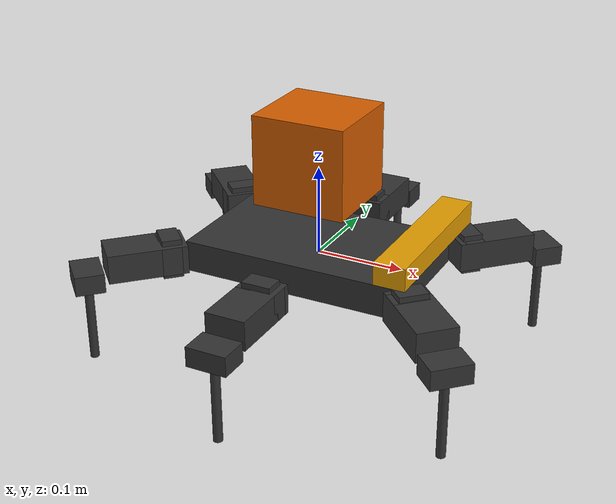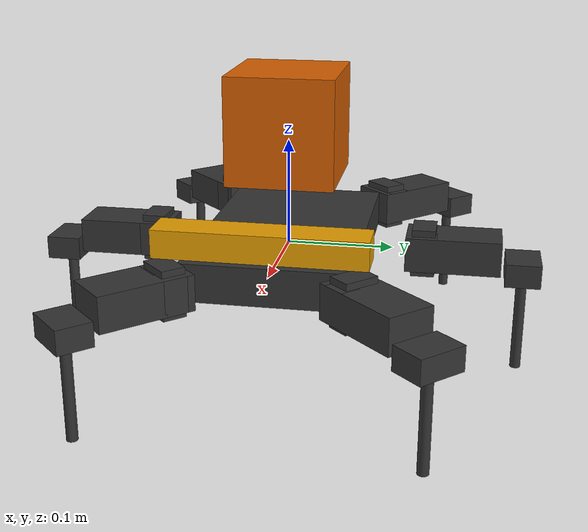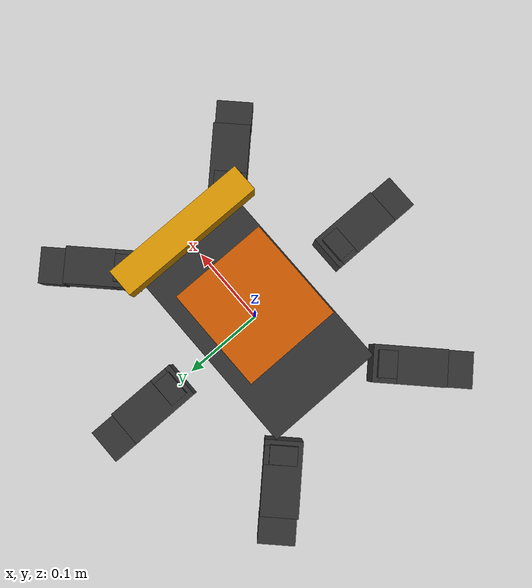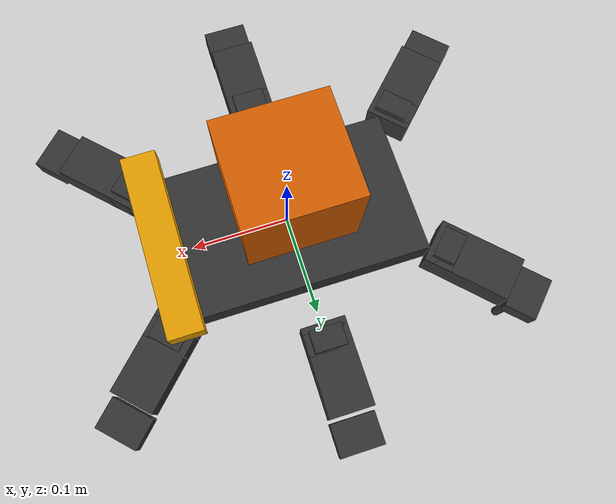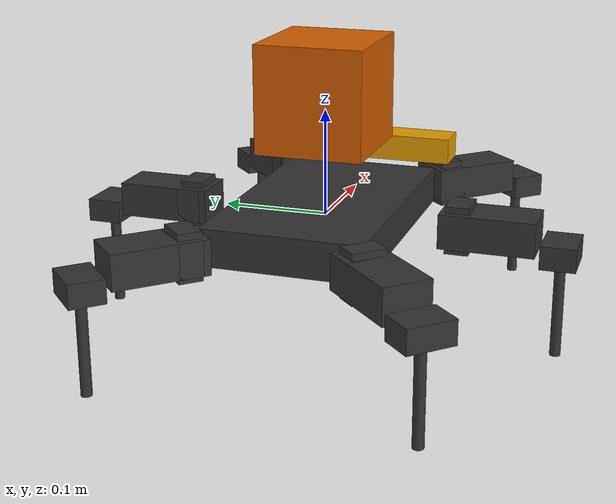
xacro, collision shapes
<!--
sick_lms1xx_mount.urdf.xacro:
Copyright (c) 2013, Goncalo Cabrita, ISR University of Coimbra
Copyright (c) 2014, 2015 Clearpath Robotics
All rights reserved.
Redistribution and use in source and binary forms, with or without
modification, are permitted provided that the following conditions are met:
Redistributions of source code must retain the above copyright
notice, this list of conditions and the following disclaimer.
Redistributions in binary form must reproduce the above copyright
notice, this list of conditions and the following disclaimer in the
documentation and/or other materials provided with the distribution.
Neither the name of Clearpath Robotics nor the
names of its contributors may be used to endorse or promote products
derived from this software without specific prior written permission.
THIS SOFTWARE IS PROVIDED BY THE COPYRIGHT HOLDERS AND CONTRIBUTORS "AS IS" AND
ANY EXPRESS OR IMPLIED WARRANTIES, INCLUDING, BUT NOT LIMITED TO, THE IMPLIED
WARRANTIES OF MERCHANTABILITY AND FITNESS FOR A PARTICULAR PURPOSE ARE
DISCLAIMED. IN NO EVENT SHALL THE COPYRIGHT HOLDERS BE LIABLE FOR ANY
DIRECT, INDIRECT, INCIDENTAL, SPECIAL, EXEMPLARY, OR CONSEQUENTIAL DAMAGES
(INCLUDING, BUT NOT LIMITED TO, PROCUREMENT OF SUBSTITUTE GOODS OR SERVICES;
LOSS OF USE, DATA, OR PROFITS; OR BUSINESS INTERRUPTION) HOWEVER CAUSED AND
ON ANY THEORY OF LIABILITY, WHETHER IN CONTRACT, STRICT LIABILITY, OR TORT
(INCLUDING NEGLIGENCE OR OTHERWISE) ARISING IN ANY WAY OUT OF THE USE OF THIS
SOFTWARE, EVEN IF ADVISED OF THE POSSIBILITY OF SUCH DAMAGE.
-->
<?xml version="1.0" ?>
<robot name="Simple_Hexapod"  xmlns:xacro="http://www.ros.org/wiki/xacro">

  <xacro:include filename="$(find simple_hexapod_description)/urdf/simple_hexapod_urdf.xacro" />
  <xacro:include filename="$(find simple_hexapod_description)/urdf/sensor_urdf/asus_camera.urdf.xacro" />
  <xacro:include filename="$(find simple_hexapod_description)/urdf/sensor_urdf/sick_lms1xx_mount.urdf.xacro" />

  <link name="base_link"/>

	<xacro:simple_hexapod parent="base_link">
        <origin xyz="0 0 0" rpy="0 0 0" />
    </xacro:simple_hexapod>

	<xacro:asus_camera name="depth_camera" parent="base_link">
    	<origin xyz="0.125 0 0.04" rpy="0 0 0"/>
  	</xacro:asus_camera>

	<xacro:sick_lms1xx_mount parent="base_link">
    	<origin xyz="0 0 0.0175" rpy="0 0 0"/>
  	</xacro:sick_lms1xx_mount>

	<gazebo>
    	<plugin filename="libgazebo_ros_control.so" name="gazebo_ros_control">
      	<robotNamespace>/simple_hexapod</robotNamespace>
    	</plugin>
  	</gazebo>

</robot>

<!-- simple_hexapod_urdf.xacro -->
<robot xmlns:xacro="http://www.ros.org/wiki/xacro">

<xacro:property name="connect_offset" value="0.02633" />
<xacro:property name="thigh_offset_x" value="0" />
<xacro:property name="thigh_offset_y" value="-0.0645" />
<xacro:property name="thigh_offset_z" value="-0.0145" />
<xacro:property name="camera_link" value="0.05" /> <!-- Size of square 'camera' box -->

<xacro:macro name="simple_hexapod" params="parent *origin">

      <joint name="j_simple_hexapod_attachment" type="fixed">
        <parent link="${parent}"/>
        <child link="MP_BODY"/>
        <xacro:insert_block name="origin" />
      </joint>

      <link name="MP_BODY">
        <inertial>
          <origin xyz="0 0 0" />
          <mass value="0.97559947"/>
          <inertia ixx="3.1081800"  ixy="-0.25460189"  ixz="2.0318174" iyy="6.3787776" iyz="0.16417863" izz="5.3316425" />
        </inertial>
        <visual>
          <!--origin xyz="-0.0235 0 -0.03525" rpy="0 0 0" /-->
          <origin xyz="0 0 0" rpy="0 0 0" />
          <geometry>
            <box size="0.25 0.15 0.035" />
          </geometry>
          <material name="Grey">
            <color rgba="0.20 0.20 0.20 1.0"/>
          </material>
        </visual>
        <collision>
          <origin xyz="0 0 0" rpy="0 0 0" />
          <geometry>
            <box size="0.25 0.15 0.035" />
          </geometry>

        </collision>
      </link>

      <gazebo reference="MP_BODY">
        <material>Gazebo/Grey</material>
      </gazebo>

    <xacro:leg_l xyz="0.1248 -0.06164  0.001116"  rpy="0 4.7123 0.7853981633974483" suffix="rf"/>
    <xacro:leg_l xyz="0 -0.1034  0.001116"  rpy="0 4.7123 0" suffix="rm"/>
    <xacro:leg_l xyz="-0.1248 -0.06164  0.001116"  rpy="0 4.7123 -0.7853981633974483" suffix="rr"/>

    <xacro:leg_l xyz="0.1248 0.06164  0.001116"  rpy="0 4.7123 2.356194490192345" suffix="lf"/>
    <xacro:leg_l xyz="0 0.1034  0.001116"  rpy="0 4.7123 3.14159" suffix="lm"/>
    <xacro:leg_l xyz="-0.1248 0.06164  0.001116"  rpy="0 4.7123 3.9269908169872414" suffix="lr"/>

</xacro:macro>

 <xacro:macro name="leg_l" params="xyz rpy suffix">

  <link name="c1_${suffix}">
    <inertial>
      <origin xyz="0 -${connect_offset} 0" rpy="0 0 0"  />
      <mass value="0.024357719"/>
     <inertia ixx="0.0051411124"  ixy="-0.00057530255"  ixz="-0.000024729049" iyy="0.0081915737" iyz="-0.000019223094" izz="0.0011379812" />
    </inertial>
    <visual>
      <origin xyz="0 -0.0252 0" rpy="0 0 0"  />
      <geometry>
        <box size="0.045 0.022 0.0325" />
      </geometry>
      <material name="Grey">
        <color rgba="0.20 0.20 0.20 1.0"/>
      </material>
    </visual>
    <collision>
      <origin xyz="0 -${connect_offset} 0" rpy="0 0 0"  />
      <geometry>
        <box size="0.045 0.022 0.0325" />
      </geometry>
    </collision>
  </link>

  <link name="c2_${suffix}">
    <inertial>
      <origin xyz="0 -${connect_offset} 0" rpy="0 0 0"  />
      <mass value="0.024357719"/>
     <inertia ixx="0.0051411124"  ixy="-0.00057530255"  ixz="-0.000024729049" iyy="0.0081915737" iyz="-0.000019223094" izz="0.0011379812" />
    </inertial>
    <visual>
      <origin xyz="0 -0.0252 0" rpy="0 0 0"  />
      <geometry>
        <box size="0.045 0.022 0.0325" />
      </geometry>
      <material name="Grey">
        <color rgba="0.20 0.20 0.20 1.0"/>
      </material>
    </visual>
    <collision>
      <origin xyz="0 -${connect_offset} 0" rpy="0 0 0"  />
      <geometry>
        <box size="0.045 0.022 0.0325" />
      </geometry>
    </collision>
  </link>

  <link name="thigh_${suffix}">
    <inertial>
      <origin xyz="0 0 0" rpy="0 0 0"  />
      <mass value="0.024357719"/>
     <inertia ixx="0.0051411124"  ixy="-0.00057530255"  ixz="-0.000024729049" iyy="0.0081915737" iyz="-0.000019223094" izz="0.0011379812" />
    </inertial>
    <visual>
      <origin xyz="0 0 0" rpy="0 0 0"  />
      <geometry>
        <box size="0.045 0.088 0.0325" />
      </geometry>
      <material name="Grey">
        <color rgba="0.20 0.20 0.20 1.0"/>
      </material>
    </visual>
    <collision>
      <origin xyz="0 0 0" rpy="0 0 0"  />
      <geometry>
        <box size="0.045 0.088 0.0325" />
      </geometry>
    </collision>
  </link>

  <link name="tibia_${suffix}">
    <inertial>
      <origin xyz="0 0 0" rpy="0 0 0"  />
      <mass value="0.024357719"/>
     <inertia ixx="0.0051411124"  ixy="-0.00057530255"  ixz="-0.000024729049" iyy="0.0081915737" iyz="-0.000019223094" izz="0.0011379812" />
    </inertial>
    <visual>
      <origin xyz="0 0 0" rpy="0 0 0"  />
      <geometry>
        <box size="0.045 0.022 0.0325" />
      </geometry>
      <material name="Grey">
        <color rgba="0.20 0.20 0.20 1.0"/>
      </material>
    </visual>
    <collision>
      <origin xyz="0 0 0" rpy="0 0 0"  />
      <geometry>
        <box size="0.045 0.022 0.0325" />
      </geometry>
    </collision>
  </link>

  <link name="tibia_ext_${suffix}">
    <inertial>
      <origin xyz="0 0 0" rpy="0 0 0"  />
      <mass value="0.024357719"/>
     <inertia ixx="0.0051411124"  ixy="-0.00057530255"  ixz="-0.000024729049" iyy="0.0081915737" iyz="-0.000019223094" izz="0.0011379812" />
    </inertial>
    <visual>
      <origin xyz="0 0 -0.05" rpy="0 0 0"  />
      <geometry>
        <cylinder length="0.1" radius="0.005"/>
      </geometry>
      <material name="Grey">
        <color rgba="0.20 0.20 0.20 1.0"/>
      </material>
    </visual>
    <collision>
      <origin xyz="0 0 -0.05" rpy="0 0 0"  />
      <geometry>
        <cylinder length="0.1" radius="0.005"/>
      </geometry>
    </collision>
  </link>

  <joint name="j_c1_${suffix}" type="revolute">
    <parent link="MP_BODY"/>
    <child link="c1_${suffix}"/>
    <origin xyz="${xyz}" rpy="${rpy}" />
    <axis xyz="1 0 0" />
    <limit effort="2.8" velocity="5.6548668" lower="-2.6179939" upper="2.6179939" />
  </joint>

  <joint name="j_c2_${suffix}" type="fixed">
    <parent link="c1_${suffix}"/>
    <child link="c2_${suffix}"/>
    <origin xyz="0 -0.054 0" rpy="0 1.5704 3.14159" />
  </joint>

  <joint name="j_thigh_${suffix}" type="revolute">
    <parent link="c2_${suffix}"/>
    <child link="thigh_${suffix}"/>
    <origin xyz="0 0 0" rpy=" 0 3.14159 3.14159" />
    <axis xyz="1 0 0" />
    <limit effort="2.8" velocity="5.6548668" lower="-2.6179939" upper="2.6179939" />
  </joint>

  <joint name="j_tibia_${suffix}" type="revolute">
    <parent link="thigh_${suffix}"/>
    <child link="tibia_${suffix}"/>
    <origin xyz="${thigh_offset_x} ${thigh_offset_y} ${thigh_offset_z}" rpy="-1.5707 0 3.14159" />
    <axis xyz="1 0 0" />
    <limit effort="2.8" velocity="5.6548668" lower="-2.6179939" upper="2.6179939" />
  </joint>

  <joint name="j_tibia_ext_${suffix}" type="fixed">
    <parent link="tibia_${suffix}"/>
    <child link="tibia_ext_${suffix}"/>
    <origin xyz="0 0 0" rpy="1.57075 0 0" />
  </joint>

   <transmission name="t_c1_${suffix}">
    <type>transmission_interface/SimpleTransmission</type>
    <joint name="j_c1_${suffix}">
      <hardwareInterface>EffortJointInterface</hardwareInterface>
    </joint>
    <actuator name="m_c1_${suffix}">
      <hardwareInterface>EffortJointInterface</hardwareInterface>
      <mechanicalReduction>1</mechanicalReduction>
    </actuator>
  </transmission>

   <transmission name="t_thigh_${suffix}">
    <type>transmission_interface/SimpleTransmission</type>
    <joint name="j_thigh_${suffix}">
      <hardwareInterface>EffortJointInterface</hardwareInterface>
    </joint>
    <actuator name="m_thigh_${suffix}">
      <hardwareInterface>EffortJointInterface</hardwareInterface>
      <mechanicalReduction>1</mechanicalReduction>
    </actuator>
  </transmission>

   <transmission name="t_tibia_${suffix}">
    <type>transmission_interface/SimpleTransmission</type>
    <joint name="j_tibia_${suffix}">
      <hardwareInterface>EffortJointInterface</hardwareInterface>
    </joint>
    <actuator name="m_tibia_${suffix}">
      <hardwareInterface>EffortJointInterface</hardwareInterface>
      <mechanicalReduction>1</mechanicalReduction>
    </actuator>
  </transmission>

  <gazebo reference="c1_${suffix}">
    <material>Gazebo/Grey</material>
  </gazebo>

  <gazebo reference="c2_${suffix}">
    <material>Gazebo/Grey</material>
  </gazebo>

  <gazebo reference="thigh_${suffix}">
    <material>Gazebo/Grey</material>
  </gazebo>

  <gazebo reference="tibia_${suffix}">
    <material>Gazebo/Grey</material>
  </gazebo>

</xacro:macro>

</robot>

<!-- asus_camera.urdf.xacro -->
<robot xmlns:xacro="http://ros.org/wiki/xacro">
    <xacro:property name="M_PI" value="3.1415926535897931" />

    <xacro:macro name="asus_camera_model" params="name parent *origin">
      <joint name="${name}_joint" type="fixed">
        <xacro:insert_block name="origin" />
        <parent link="${parent}"/>
        <child link="${name}_link"/>
      </joint>

      <link name="${name}_link">
        <inertial>
          <mass value="0.200" />
          <origin xyz="0 0 0" rpy="0 0 0" />
          <inertia ixx="5.8083e-4" ixy="0" ixz="0" iyy="3.0833e-5" iyz="0" izz="5.9083e-4" />
        </inertial>
        <visual>
          <origin xyz="0 0 0" rpy="0 0 0" />
          <geometry>
            <mesh filename="package://hector_sensors_description/meshes/asus_camera/asus_camera_simple.dae"/>
          </geometry>
        </visual>
        <collision>
          <origin xyz="0 0 0" rpy="0 0 0" />
          <geometry>
            <box size="0.035 0.185 0.025"/>
          </geometry>
        </collision>
      </link>

      <joint name="${name}_depth_joint" type="fixed">
        <origin xyz="0.0 0.049 0.0" rpy="0 0 0" />
        <parent link="${name}_link" />
        <child link="${name}_depth_frame"/>
      </joint>

      <link name="${name}_depth_frame"/>

      <joint name="${name}_depth_optical_joint" type="fixed">
        <origin xyz="0 0 0" rpy="${-M_PI/2} 0.0 ${-M_PI/2}" />
        <parent link="${name}_depth_frame" />
        <child link="${name}_depth_optical_frame"/>
      </joint>

      <link name="${name}_depth_optical_frame"/>

      <joint name="${name}_rgb_joint" type="fixed">
        <origin xyz="0.0 0.022 0.0" rpy="0 0 0" />
        <parent link="${name}_link" />
        <child link="${name}_rgb_frame"/>
      </joint>

      <link name="${name}_rgb_frame"/>

      <joint name="${name}_rgb_optical_joint" type="fixed">
        <origin xyz="0 0 0" rpy="${-M_PI/2} 0.0 ${-M_PI/2}" />
        <parent link="${name}_rgb_frame" />
        <child link="${name}_rgb_optical_frame"/>
      </joint>

      <link name="${name}_rgb_optical_frame"/>
    </xacro:macro>

    <xacro:macro name="asus_camera" params="name parent *origin">
      <xacro:asus_camera_model name="${name}" parent="${parent}">
        <xacro:insert_block name="origin" />
      </xacro:asus_camera_model>

      <!-- ASUS Xtion PRO camera for simulation -->
      <gazebo reference="${name}_depth_frame">
        <sensor type="depth" name="${name}">
          <update_rate>20</update_rate>
          <camera>
            <horizontal_fov>${62.8 * M_PI/180.0}</horizontal_fov>
            <image>
              <format>R8G8B8</format>
              <width>640</width>
              <height>480</height>
            </image>
            <clip>
              <near>0.05</near>
              <far>9</far>
            </clip>
          </camera>
          <plugin name="${name}_camera_controller" filename="libgazebo_ros_openni_kinect.so">
            <alwaysOn>true</alwaysOn>
            <updateRate>20</updateRate>
            <imageTopicName>${name}/rgb/image_raw</imageTopicName>
            <cameraInfoTopicName>${name}/rgb/camera_info</cameraInfoTopicName>
            <depthImageTopicName>${name}/depth/image_raw</depthImageTopicName>
            <depthImageCameraInfoTopicName>${name}/depth/camera_info</depthImageCameraInfoTopicName>
            <pointCloudTopicName>${name}/depth/points</pointCloudTopicName>
            <frameName>${name}_depth_optical_frame</frameName>
            <distortion_k1>0.0</distortion_k1>
            <distortion_k2>0.0</distortion_k2>
            <distortion_k3>0.0</distortion_k3>
            <distortion_t1>0.0</distortion_t1>
            <distortion_t2>0.0</distortion_t2>
          </plugin>
        </sensor>
      </gazebo>
    </xacro:macro>
</robot>

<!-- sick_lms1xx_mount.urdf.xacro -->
<robot xmlns:xacro="http://ros.org/wiki/xacro">

  <xacro:include filename="$(find lms1xx)/urdf/sick_lms1xx.urdf.xacro" />

  <xacro:macro name="sick_lms1xx_mount" params="parent *origin">

    <joint name="front_laser_mount_joint" type="fixed">
		  <xacro:insert_block name="origin" />
		  <parent link="${parent}" />
		  <child link="front_laser_mount" />
	  </joint>

    <sick_lms1xx frame="front_laser" topic="front/scan" />

    <link name="front_laser_mount">
      <visual>
        <origin xyz="0 0 0" rpy="0 0 0" />
        <geometry>
          <!-- Origin of this mesh is the base of the bracket. -->
          <mesh filename="package://simple_hexapod_description/meshes/sick-lms1xx-bracket.stl" scale="1 1 1"/>
        </geometry>
        <material name="dark_grey" />
      </visual>
    </link>

    <joint name="front_laser_joint" type="fixed">
      <!-- This offset is from the base of the bracket to the LIDAR's focal point. -->
      <origin xyz="0 0 0.149" rpy="0 0 0" />
      <parent link="front_laser_mount" />
      <child link="front_laser" />
    </joint>

    <gazebo reference="front_laser_mount">
      <material>Gazebo/DarkGrey</material>
    </gazebo>

  </xacro:macro>

</robot>

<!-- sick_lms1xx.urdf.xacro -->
<robot xmlns:xacro="http://www.ros.org/wiki/xacro">

  <xacro:macro name="sick_lms1xx" params="frame:=laser topic:=scan sample_size:=720 update_rate:=5
               min_angle:=-2.35619 max_angle:=2.35619 min_range:=0.1 max_range:=30.0 robot_namespace:=/" >
    <link name="${frame}">
      <inertial>
        <mass value="1.1" />
        <origin xyz="0 0 0" />
        <inertia ixx="${0.0833333 * 1.1 * (0.102*0.102 + 0.152*0.152)}" ixy="0.0" ixz="0.0"
          iyy="${0.0833333 * 1.1 * (0.105*0.105 + 0.152*0.152)}" iyz="0.0"
          izz="${0.0833333 * 1.1 * (0.105*0.105 + 0.102*0.102)}" />
      </inertial>
      <visual>
        <origin xyz="0 0 0" rpy="0 0 0" />
        <geometry>
          <!-- Origin of this mesh is the focal point of the LIDAR. -->
          <mesh filename="file://$(find lms1xx)/meshes/sick-lms1xx.dae" />
        </geometry>
      </visual>
      <collision>
        <origin xyz="0 0 -0.05" rpy="0 0 0" />
        <geometry>
          <box size="0.105 0.1 0.1" />
        </geometry>
      </collision>
    </link>

    <gazebo reference="${frame}">
      <turnGravityOff>true</turnGravityOff>
      <sensor type="ray" name="${frame}">
        <pose>0 0 0 0 0 0</pose>
        <visualize>false</visualize>
        <update_rate>${update_rate}</update_rate>
        <ray>
          <scan>
            <horizontal>
              <samples>${sample_size}</samples>
              <resolution>1</resolution>
              <min_angle>${min_angle}</min_angle>
              <max_angle>${max_angle}</max_angle>
            </horizontal>
          </scan>
          <range>
            <min>${min_range}</min>
            <max>${max_range}</max>
            <resolution>0.01</resolution>
          </range>
          <noise>
            <type>gaussian</type>
            <mean>0.0</mean>
            <stddev>0.001</stddev>
          </noise>
        </ray>
        <plugin name="${frame}_scan" filename="libgazebo_ros_ray_sensor.so">
          <ros>
            <remapping>~/out:=${topic}</remapping>
            <qos>
              <topic name="${topic}">
                  <publisher>
                      <reliability>best_effort</reliability>
                  </publisher>
              </topic>
            </qos>
          </ros>
          <frame_name>${frame}</frame_name>
          <robot_namespace>${robot_namespace}</robot_namespace>
          <output_type>sensor_msgs/LaserScan</output_type>
        </plugin>
      </sensor>
    </gazebo>

  </xacro:macro>
</robot>
